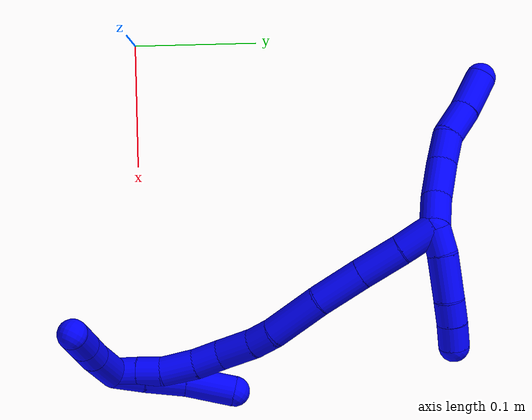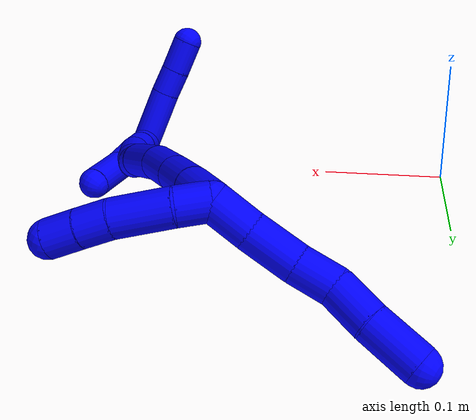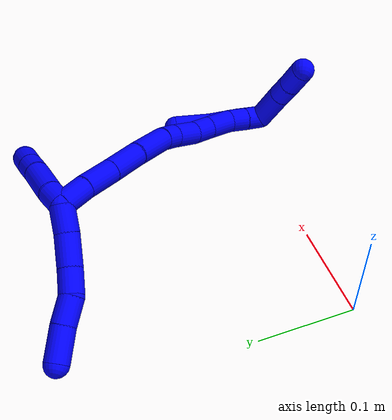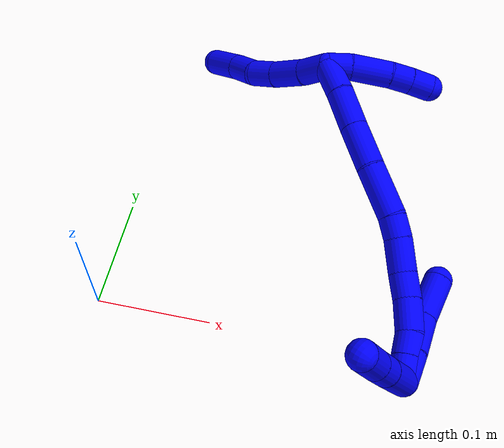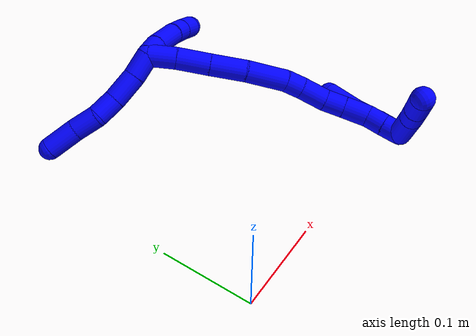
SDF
<sdf version="1.7">
 <world name="default">
  <model name="1">
   <static>0</static>
   <link name="1">
    <collision name="collision-cylinder-e_1_2_8">
     <pose>0.005383 0.004339 -0.012065 -2.79635 0.397531 -1.7146</pose>
     <geometry><cylinder><radius>0.0125</radius><length>0.027811</length></cylinder></geometry>
     <surface>
      <friction><ode><mu>1.16</mu><mu2>1.16</mu2><slip1>0</slip1><slip2>0</slip2></ode></friction>
      <contact><ode><kp>1e+06</kp><kd>1</kd><max_vel>0</max_vel><min_depth>0.001</min_depth></ode></contact>
     </surface>
    </collision>
    <visual name="visual-cylinder-e_1_2_8">
     <pose>0.005383 0.004339 -0.012065 -2.79635 0.397531 -1.7146</pose>
     <geometry><cylinder><radius>0.0125</radius><length>0.027811</length></cylinder></geometry>
     <material><ambient>0 0 1 1</ambient></material>
    </visual>
    <collision name="collision-cylinder-e_2_8_9">
     <pose>0.015769 0.012421 -0.039498 -2.90271 0.306296 -1.81986</pose>
     <geometry><cylinder><radius>0.0125</radius><length>0.03318</length></cylinder></geometry>
     <surface>
      <friction><ode><mu>1.16</mu><mu2>1.16</mu2><slip1>0</slip1><slip2>0</slip2></ode></friction>
      <contact><ode><kp>1e+06</kp><kd>1</kd><max_vel>0</max_vel><min_depth>0.001</min_depth></ode></contact>
     </surface>
    </collision>
    <visual name="visual-cylinder-e_2_8_9">
     <pose>0.015769 0.012421 -0.039498 -2.90271 0.306296 -1.81986</pose>
     <geometry><cylinder><radius>0.0125</radius><length>0.03318</length></cylinder></geometry>
     <material><ambient>0 0 1 1</ambient></material>
    </visual>
    <collision name="collision-cylinder-e_3_9_10">
     <pose>0.024048 0.017552 -0.067336 -3.03073 0.255447 -2.32592</pose>
     <geometry><cylinder><radius>0.0125</radius><length>0.025935</length></cylinder></geometry>
     <surface>
      <friction><ode><mu>1.16</mu><mu2>1.16</mu2><slip1>0</slip1><slip2>0</slip2></ode></friction>
      <contact><ode><kp>1e+06</kp><kd>1</kd><max_vel>0</max_vel><min_depth>0.001</min_depth></ode></contact>
     </surface>
    </collision>
    <visual name="visual-cylinder-e_3_9_10">
     <pose>0.024048 0.017552 -0.067336 -3.03073 0.255447 -2.32592</pose>
     <geometry><cylinder><radius>0.0125</radius><length>0.025935</length></cylinder></geometry>
     <material><ambient>0 0 1 1</ambient></material>
    </visual>
    <collision name="collision-cylinder-e_4_10_11">
     <pose>0.026498 0.022349 -0.093447 -2.89671 -0.058731 0.468638</pose>
     <geometry><cylinder><radius>0.0125</radius><length>0.02817</length></cylinder></geometry>
     <surface>
      <friction><ode><mu>1.16</mu><mu2>1.16</mu2><slip1>0</slip1><slip2>0</slip2></ode></friction>
      <contact><ode><kp>1e+06</kp><kd>1</kd><max_vel>0</max_vel><min_depth>0.001</min_depth></ode></contact>
     </surface>
    </collision>
    <visual name="visual-cylinder-e_4_10_11">
     <pose>0.026498 0.022349 -0.093447 -2.89671 -0.058731 0.468638</pose>
     <geometry><cylinder><radius>0.0125</radius><length>0.02817</length></cylinder></geometry>
     <material><ambient>0 0 1 1</ambient></material>
    </visual>
    <collision name="collision-cylinder-e_5_11_6">
     <pose>0.026389 0.02946 -0.124128 -2.92765 0.041164 -0.378795</pose>
     <geometry><cylinder><radius>0.0125</radius><length>0.034904</length></cylinder></geometry>
     <surface>
      <friction><ode><mu>1.16</mu><mu2>1.16</mu2><slip1>0</slip1><slip2>0</slip2></ode></friction>
      <contact><ode><kp>1e+06</kp><kd>1</kd><max_vel>0</max_vel><min_depth>0.001</min_depth></ode></contact>
     </surface>
    </collision>
    <visual name="visual-cylinder-e_5_11_6">
     <pose>0.026389 0.02946 -0.124128 -2.92765 0.041164 -0.378795</pose>
     <geometry><cylinder><radius>0.0125</radius><length>0.034904</length></cylinder></geometry>
     <material><ambient>0 0 1 1</ambient></material>
    </visual>
    <collision name="collision-cylinder-e_1_2_12">
     <pose>-0.006456 0.004685 0.007367 -0.566472 -0.636745 0.191273</pose>
     <geometry><cylinder><radius>0.0125</radius><length>0.021717</length></cylinder></geometry>
     <surface>
      <friction><ode><mu>1.16</mu><mu2>1.16</mu2><slip1>0</slip1><slip2>0</slip2></ode></friction>
      <contact><ode><kp>1e+06</kp><kd>1</kd><max_vel>0</max_vel><min_depth>0.001</min_depth></ode></contact>
     </surface>
    </collision>
    <visual name="visual-cylinder-e_1_2_12">
     <pose>-0.006456 0.004685 0.007367 -0.566472 -0.636745 0.191273</pose>
     <geometry><cylinder><radius>0.0125</radius><length>0.021717</length></cylinder></geometry>
     <material><ambient>0 0 1 1</ambient></material>
    </visual>
    <collision name="collision-cylinder-e_2_12_13">
     <pose>-0.021593 0.018927 0.028413 -0.609777 -0.479689 0.153618</pose>
     <geometry><cylinder><radius>0.0125</radius><length>0.037621</length></cylinder></geometry>
     <surface>
      <friction><ode><mu>1.16</mu><mu2>1.16</mu2><slip1>0</slip1><slip2>0</slip2></ode></friction>
      <contact><ode><kp>1e+06</kp><kd>1</kd><max_vel>0</max_vel><min_depth>0.001</min_depth></ode></contact>
     </surface>
    </collision>
    <visual name="visual-cylinder-e_2_12_13">
     <pose>-0.021593 0.018927 0.028413 -0.609777 -0.479689 0.153618</pose>
     <geometry><cylinder><radius>0.0125</radius><length>0.037621</length></cylinder></geometry>
     <material><ambient>0 0 1 1</ambient></material>
    </visual>
    <collision name="collision-cylinder-e_3_13_14">
     <pose>-0.034394 0.034623 0.048836 -0.738588 -0.424354 0.166372</pose>
     <geometry><cylinder><radius>0.0125</radius><length>0.020014</length></cylinder></geometry>
     <surface>
      <friction><ode><mu>1.16</mu><mu2>1.16</mu2><slip1>0</slip1><slip2>0</slip2></ode></friction>
      <contact><ode><kp>1e+06</kp><kd>1</kd><max_vel>0</max_vel><min_depth>0.001</min_depth></ode></contact>
     </surface>
    </collision>
    <visual name="visual-cylinder-e_3_13_14">
     <pose>-0.034394 0.034623 0.048836 -0.738588 -0.424354 0.166372</pose>
     <geometry><cylinder><radius>0.0125</radius><length>0.020014</length></cylinder></geometry>
     <material><ambient>0 0 1 1</ambient></material>
    </visual>
    <collision name="collision-cylinder-e_4_14_5">
     <pose>-0.042259 0.047309 0.062631 -0.748187 -0.371138 0.147131</pose>
     <geometry><cylinder><radius>0.0125</radius><length>0.020649</length></cylinder></geometry>
     <surface>
      <friction><ode><mu>1.16</mu><mu2>1.16</mu2><slip1>0</slip1><slip2>0</slip2></ode></friction>
      <contact><ode><kp>1e+06</kp><kd>1</kd><max_vel>0</max_vel><min_depth>0.001</min_depth></ode></contact>
     </surface>
    </collision>
    <visual name="visual-cylinder-e_4_14_5">
     <pose>-0.042259 0.047309 0.062631 -0.748187 -0.371138 0.147131</pose>
     <geometry><cylinder><radius>0.0125</radius><length>0.020649</length></cylinder></geometry>
     <material><ambient>0 0 1 1</ambient></material>
    </visual>
    <collision name="collision-cylinder-e_1_2_15">
     <pose>0.008694 0.002666 0.012994 -0.202336 0.580165 -0.060586</pose>
     <geometry><cylinder><radius>0.0125</radius><length>0.03172</length></cylinder></geometry>
     <surface>
      <friction><ode><mu>1.16</mu><mu2>1.16</mu2><slip1>0</slip1><slip2>0</slip2></ode></friction>
      <contact><ode><kp>1e+06</kp><kd>1</kd><max_vel>0</max_vel><min_depth>0.001</min_depth></ode></contact>
     </surface>
    </collision>
    <visual name="visual-cylinder-e_1_2_15">
     <pose>0.008694 0.002666 0.012994 -0.202336 0.580165 -0.060586</pose>
     <geometry><cylinder><radius>0.0125</radius><length>0.03172</length></cylinder></geometry>
     <material><ambient>0 0 1 1</ambient></material>
    </visual>
    <collision name="collision-cylinder-e_2_15_16">
     <pose>0.028412 0.009566 0.040461 -0.284657 0.631298 -0.093524</pose>
     <geometry><cylinder><radius>0.0125</radius><length>0.03736</length></cylinder></geometry>
     <surface>
      <friction><ode><mu>1.16</mu><mu2>1.16</mu2><slip1>0</slip1><slip2>0</slip2></ode></friction>
      <contact><ode><kp>1e+06</kp><kd>1</kd><max_vel>0</max_vel><min_depth>0.001</min_depth></ode></contact>
     </surface>
    </collision>
    <visual name="visual-cylinder-e_2_15_16">
     <pose>0.028412 0.009566 0.040461 -0.284657 0.631298 -0.093524</pose>
     <geometry><cylinder><radius>0.0125</radius><length>0.03736</length></cylinder></geometry>
     <material><ambient>0 0 1 1</ambient></material>
    </visual>
    <collision name="collision-cylinder-e_3_16_17">
     <pose>0.051068 0.018603 0.070889 -0.292347 0.609423 -0.092539</pose>
     <geometry><cylinder><radius>0.0125</radius><length>0.04064</length></cylinder></geometry>
     <surface>
      <friction><ode><mu>1.16</mu><mu2>1.16</mu2><slip1>0</slip1><slip2>0</slip2></ode></friction>
      <contact><ode><kp>1e+06</kp><kd>1</kd><max_vel>0</max_vel><min_depth>0.001</min_depth></ode></contact>
     </surface>
    </collision>
    <visual name="visual-cylinder-e_3_16_17">
     <pose>0.051068 0.018603 0.070889 -0.292347 0.609423 -0.092539</pose>
     <geometry><cylinder><radius>0.0125</radius><length>0.04064</length></cylinder></geometry>
     <material><ambient>0 0 1 1</ambient></material>
    </visual>
    <collision name="collision-cylinder-e_4_17_18">
     <pose>0.075448 0.031899 0.104692 -0.444211 0.572822 -0.132823</pose>
     <geometry><cylinder><radius>0.0125</radius><length>0.047042</length></cylinder></geometry>
     <surface>
      <friction><ode><mu>1.16</mu><mu2>1.16</mu2><slip1>0</slip1><slip2>0</slip2></ode></friction>
      <contact><ode><kp>1e+06</kp><kd>1</kd><max_vel>0</max_vel><min_depth>0.001</min_depth></ode></contact>
     </surface>
    </collision>
    <visual name="visual-cylinder-e_4_17_18">
     <pose>0.075448 0.031899 0.104692 -0.444211 0.572822 -0.132823</pose>
     <geometry><cylinder><radius>0.0125</radius><length>0.047042</length></cylinder></geometry>
     <material><ambient>0 0 1 1</ambient></material>
    </visual>
    <collision name="collision-cylinder-e_5_18_19">
     <pose>0.094621 0.044796 0.128878 -0.607091 0.694304 -0.22569</pose>
     <geometry><cylinder><radius>0.0125</radius><length>0.020082</length></cylinder></geometry>
     <surface>
      <friction><ode><mu>1.16</mu><mu2>1.16</mu2><slip1>0</slip1><slip2>0</slip2></ode></friction>
      <contact><ode><kp>1e+06</kp><kd>1</kd><max_vel>0</max_vel><min_depth>0.001</min_depth></ode></contact>
     </surface>
    </collision>
    <visual name="visual-cylinder-e_5_18_19">
     <pose>0.094621 0.044796 0.128878 -0.607091 0.694304 -0.22569</pose>
     <geometry><cylinder><radius>0.0125</radius><length>0.020082</length></cylinder></geometry>
     <material><ambient>0 0 1 1</ambient></material>
    </visual>
    <collision name="collision-cylinder-e_6_19_20">
     <pose>0.112304 0.054718 0.14388 -0.567268 0.831122 -0.255843</pose>
     <geometry><cylinder><radius>0.0125</radius><length>0.030484</length></cylinder></geometry>
     <surface>
      <friction><ode><mu>1.16</mu><mu2>1.16</mu2><slip1>0</slip1><slip2>0</slip2></ode></friction>
      <contact><ode><kp>1e+06</kp><kd>1</kd><max_vel>0</max_vel><min_depth>0.001</min_depth></ode></contact>
     </surface>
    </collision>
    <visual name="visual-cylinder-e_6_19_20">
     <pose>0.112304 0.054718 0.14388 -0.567268 0.831122 -0.255843</pose>
     <geometry><cylinder><radius>0.0125</radius><length>0.030484</length></cylinder></geometry>
     <material><ambient>0 0 1 1</ambient></material>
    </visual>
    <collision name="collision-cylinder-e_7_20_21">
     <pose>0.132095 0.062764 0.160044 -0.324765 0.822945 -0.142738</pose>
     <geometry><cylinder><radius>0.0125</radius><length>0.023273</length></cylinder></geometry>
     <surface>
      <friction><ode><mu>1.16</mu><mu2>1.16</mu2><slip1>0</slip1><slip2>0</slip2></ode></friction>
      <contact><ode><kp>1e+06</kp><kd>1</kd><max_vel>0</max_vel><min_depth>0.001</min_depth></ode></contact>
     </surface>
    </collision>
    <visual name="visual-cylinder-e_7_20_21">
     <pose>0.132095 0.062764 0.160044 -0.324765 0.822945 -0.142738</pose>
     <geometry><cylinder><radius>0.0125</radius><length>0.023273</length></cylinder></geometry>
     <material><ambient>0 0 1 1</ambient></material>
    </visual>
    <collision name="collision-cylinder-e_8_21_22">
     <pose>0.152193 0.066702 0.176217 -0.161493 0.921106 -0.080254</pose>
     <geometry><cylinder><radius>0.0125</radius><length>0.029053</length></cylinder></geometry>
     <surface>
      <friction><ode><mu>1.16</mu><mu2>1.16</mu2><slip1>0</slip1><slip2>0</slip2></ode></friction>
      <contact><ode><kp>1e+06</kp><kd>1</kd><max_vel>0</max_vel><min_depth>0.001</min_depth></ode></contact>
     </surface>
    </collision>
    <visual name="visual-cylinder-e_8_21_22">
     <pose>0.152193 0.066702 0.176217 -0.161493 0.921106 -0.080254</pose>
     <geometry><cylinder><radius>0.0125</radius><length>0.029053</length></cylinder></geometry>
     <material><ambient>0 0 1 1</ambient></material>
    </visual>
    <collision name="collision-cylinder-e_9_22_23">
     <pose>0.172954 0.068296 0.189005 -0.044119 1.14967 -0.028583</pose>
     <geometry><cylinder><radius>0.0125</radius><length>0.020149</length></cylinder></geometry>
     <surface>
      <friction><ode><mu>1.16</mu><mu2>1.16</mu2><slip1>0</slip1><slip2>0</slip2></ode></friction>
      <contact><ode><kp>1e+06</kp><kd>1</kd><max_vel>0</max_vel><min_depth>0.001</min_depth></ode></contact>
     </surface>
    </collision>
    <visual name="visual-cylinder-e_9_22_23">
     <pose>0.172954 0.068296 0.189005 -0.044119 1.14967 -0.028583</pose>
     <geometry><cylinder><radius>0.0125</radius><length>0.020149</length></cylinder></geometry>
     <material><ambient>0 0 1 1</ambient></material>
    </visual>
    <collision name="collision-cylinder-e_10_23_1">
     <pose>0.191175 0.0689 0.197629 -0.09325 1.10569 -0.057563</pose>
     <geometry><cylinder><radius>0.0125</radius><length>0.020198</length></cylinder></geometry>
     <surface>
      <friction><ode><mu>1.16</mu><mu2>1.16</mu2><slip1>0</slip1><slip2>0</slip2></ode></friction>
      <contact><ode><kp>1e+06</kp><kd>1</kd><max_vel>0</max_vel><min_depth>0.001</min_depth></ode></contact>
     </surface>
    </collision>
    <visual name="visual-cylinder-e_10_23_1">
     <pose>0.191175 0.0689 0.197629 -0.09325 1.10569 -0.057563</pose>
     <geometry><cylinder><radius>0.0125</radius><length>0.020198</length></cylinder></geometry>
     <material><ambient>0 0 1 1</ambient></material>
    </visual>
    <collision name="collision-cylinder-e_1_1_24">
     <pose>0.187629 0.071426 0.197892 -2.68152 -1.21025 2.48869</pose>
     <geometry><cylinder><radius>0.0125</radius><length>0.026872</length></cylinder></geometry>
     <surface>
      <friction><ode><mu>1.16</mu><mu2>1.16</mu2><slip1>0</slip1><slip2>0</slip2></ode></friction>
      <contact><ode><kp>1e+06</kp><kd>1</kd><max_vel>0</max_vel><min_depth>0.001</min_depth></ode></contact>
     </surface>
    </collision>
    <visual name="visual-cylinder-e_1_1_24">
     <pose>0.187629 0.071426 0.197892 -2.68152 -1.21025 2.48869</pose>
     <geometry><cylinder><radius>0.0125</radius><length>0.026872</length></cylinder></geometry>
     <material><ambient>0 0 1 1</ambient></material>
    </visual>
    <collision name="collision-cylinder-e_2_24_25">
     <pose>0.159889 0.076398 0.187685 -2.69319 -1.15965 2.47147</pose>
     <geometry><cylinder><radius>0.0125</radius><length>0.033095</length></cylinder></geometry>
     <surface>
      <friction><ode><mu>1.16</mu><mu2>1.16</mu2><slip1>0</slip1><slip2>0</slip2></ode></friction>
      <contact><ode><kp>1e+06</kp><kd>1</kd><max_vel>0</max_vel><min_depth>0.001</min_depth></ode></contact>
     </surface>
    </collision>
    <visual name="visual-cylinder-e_2_24_25">
     <pose>0.159889 0.076398 0.187685 -2.69319 -1.15965 2.47147</pose>
     <geometry><cylinder><radius>0.0125</radius><length>0.033095</length></cylinder></geometry>
     <material><ambient>0 0 1 1</ambient></material>
    </visual>
    <collision name="collision-cylinder-e_3_25_4">
     <pose>0.125726 0.082949 0.176598 -2.51858 -1.24987 2.30196</pose>
     <geometry><cylinder><radius>0.0125</radius><length>0.040033</length></cylinder></geometry>
     <surface>
      <friction><ode><mu>1.16</mu><mu2>1.16</mu2><slip1>0</slip1><slip2>0</slip2></ode></friction>
      <contact><ode><kp>1e+06</kp><kd>1</kd><max_vel>0</max_vel><min_depth>0.001</min_depth></ode></contact>
     </surface>
    </collision>
    <visual name="visual-cylinder-e_3_25_4">
     <pose>0.125726 0.082949 0.176598 -2.51858 -1.24987 2.30196</pose>
     <geometry><cylinder><radius>0.0125</radius><length>0.040033</length></cylinder></geometry>
     <material><ambient>0 0 1 1</ambient></material>
    </visual>
    <collision name="collision-cylinder-e_1_1_26">
     <pose>0.203893 0.045421 0.202814 1.54256 0.153209 0.148959</pose>
     <geometry><cylinder><radius>0.0125</radius><length>0.048387</length></cylinder></geometry>
     <surface>
      <friction><ode><mu>1.16</mu><mu2>1.16</mu2><slip1>0</slip1><slip2>0</slip2></ode></friction>
      <contact><ode><kp>1e+06</kp><kd>1</kd><max_vel>0</max_vel><min_depth>0.001</min_depth></ode></contact>
     </surface>
    </collision>
    <visual name="visual-cylinder-e_1_1_26">
     <pose>0.203893 0.045421 0.202814 1.54256 0.153209 0.148959</pose>
     <geometry><cylinder><radius>0.0125</radius><length>0.048387</length></cylinder></geometry>
     <material><ambient>0 0 1 1</ambient></material>
    </visual>
    <collision name="collision-cylinder-e_2_26_27">
     <pose>0.209261 0.010087 0.203066 1.60781 0.145391 0.150854</pose>
     <geometry><cylinder><radius>0.0125</radius><length>0.023127</length></cylinder></geometry>
     <surface>
      <friction><ode><mu>1.16</mu><mu2>1.16</mu2><slip1>0</slip1><slip2>0</slip2></ode></friction>
      <contact><ode><kp>1e+06</kp><kd>1</kd><max_vel>0</max_vel><min_depth>0.001</min_depth></ode></contact>
     </surface>
    </collision>
    <visual name="visual-cylinder-e_2_26_27">
     <pose>0.209261 0.010087 0.203066 1.60781 0.145391 0.150854</pose>
     <geometry><cylinder><radius>0.0125</radius><length>0.023127</length></cylinder></geometry>
     <material><ambient>0 0 1 1</ambient></material>
    </visual>
    <collision name="collision-cylinder-e_3_27_3">
     <pose>0.212671 -0.015482 0.202413 1.58702 0.122114 0.124106</pose>
     <geometry><cylinder><radius>0.0125</radius><length>0.028486</length></cylinder></geometry>
     <surface>
      <friction><ode><mu>1.16</mu><mu2>1.16</mu2><slip1>0</slip1><slip2>0</slip2></ode></friction>
      <contact><ode><kp>1e+06</kp><kd>1</kd><max_vel>0</max_vel><min_depth>0.001</min_depth></ode></contact>
     </surface>
    </collision>
    <visual name="visual-cylinder-e_3_27_3">
     <pose>0.212671 -0.015482 0.202413 1.58702 0.122114 0.124106</pose>
     <geometry><cylinder><radius>0.0125</radius><length>0.028486</length></cylinder></geometry>
     <material><ambient>0 0 1 1</ambient></material>
    </visual>
    <collision name="collision-sphere-3">
     <pose>0.214406 -0.029617 0.202184 0 -0 0</pose>
     <geometry><sphere><radius>0.0125</radius></sphere></geometry>
     <surface>
      <friction><ode><mu>1.16</mu><mu2>1.16</mu2><slip1>0</slip1><slip2>0</slip2></ode></friction>
      <contact><ode><kp>1e+06</kp><kd>1</kd><max_vel>0</max_vel><min_depth>0.001</min_depth></ode></contact>
     </surface>
    </collision>
    <visual name="visual-sphere-3">
     <pose>0.214406 -0.029617 0.202184 0 -0 0</pose>
     <geometry><sphere><radius>0.0125</radius></sphere></geometry>
     <material><ambient>0 0 1 1</ambient></material>
    </visual>
    <collision name="collision-sphere-27">
     <pose>0.210936 -0.001347 0.202642 0 -0 0</pose>
     <geometry><sphere><radius>0.0125</radius></sphere></geometry>
     <surface>
      <friction><ode><mu>1.16</mu><mu2>1.16</mu2><slip1>0</slip1><slip2>0</slip2></ode></friction>
      <contact><ode><kp>1e+06</kp><kd>1</kd><max_vel>0</max_vel><min_depth>0.001</min_depth></ode></contact>
     </surface>
    </collision>
    <visual name="visual-sphere-27">
     <pose>0.210936 -0.001347 0.202642 0 -0 0</pose>
     <geometry><sphere><radius>0.0125</radius></sphere></geometry>
     <material><ambient>0 0 1 1</ambient></material>
    </visual>
    <collision name="collision-sphere-26">
     <pose>0.207586 0.021521 0.203489 0 -0 0</pose>
     <geometry><sphere><radius>0.0125</radius></sphere></geometry>
     <surface>
      <friction><ode><mu>1.16</mu><mu2>1.16</mu2><slip1>0</slip1><slip2>0</slip2></ode></friction>
      <contact><ode><kp>1e+06</kp><kd>1</kd><max_vel>0</max_vel><min_depth>0.001</min_depth></ode></contact>
     </surface>
    </collision>
    <visual name="visual-sphere-26">
     <pose>0.207586 0.021521 0.203489 0 -0 0</pose>
     <geometry><sphere><radius>0.0125</radius></sphere></geometry>
     <material><ambient>0 0 1 1</ambient></material>
    </visual>
    <collision name="collision-sphere-4">
     <pose>0.106731 0.086634 0.17147 0 -0 0</pose>
     <geometry><sphere><radius>0.0125</radius></sphere></geometry>
     <surface>
      <friction><ode><mu>1.16</mu><mu2>1.16</mu2><slip1>0</slip1><slip2>0</slip2></ode></friction>
      <contact><ode><kp>1e+06</kp><kd>1</kd><max_vel>0</max_vel><min_depth>0.001</min_depth></ode></contact>
     </surface>
    </collision>
    <visual name="visual-sphere-4">
     <pose>0.106731 0.086634 0.17147 0 -0 0</pose>
     <geometry><sphere><radius>0.0125</radius></sphere></geometry>
     <material><ambient>0 0 1 1</ambient></material>
    </visual>
    <collision name="collision-sphere-25">
     <pose>0.14472 0.079265 0.181726 0 -0 0</pose>
     <geometry><sphere><radius>0.0125</radius></sphere></geometry>
     <surface>
      <friction><ode><mu>1.16</mu><mu2>1.16</mu2><slip1>0</slip1><slip2>0</slip2></ode></friction>
      <contact><ode><kp>1e+06</kp><kd>1</kd><max_vel>0</max_vel><min_depth>0.001</min_depth></ode></contact>
     </surface>
    </collision>
    <visual name="visual-sphere-25">
     <pose>0.14472 0.079265 0.181726 0 -0 0</pose>
     <geometry><sphere><radius>0.0125</radius></sphere></geometry>
     <material><ambient>0 0 1 1</ambient></material>
    </visual>
    <collision name="collision-sphere-24">
     <pose>0.175057 0.073531 0.193645 0 -0 0</pose>
     <geometry><sphere><radius>0.0125</radius></sphere></geometry>
     <surface>
      <friction><ode><mu>1.16</mu><mu2>1.16</mu2><slip1>0</slip1><slip2>0</slip2></ode></friction>
      <contact><ode><kp>1e+06</kp><kd>1</kd><max_vel>0</max_vel><min_depth>0.001</min_depth></ode></contact>
     </surface>
    </collision>
    <visual name="visual-sphere-24">
     <pose>0.175057 0.073531 0.193645 0 -0 0</pose>
     <geometry><sphere><radius>0.0125</radius></sphere></geometry>
     <material><ambient>0 0 1 1</ambient></material>
    </visual>
    <collision name="collision-sphere-1">
     <pose>0.200201 0.069322 0.202139 0 -0 0</pose>
     <geometry><sphere><radius>0.0125</radius></sphere></geometry>
     <surface>
      <friction><ode><mu>1.16</mu><mu2>1.16</mu2><slip1>0</slip1><slip2>0</slip2></ode></friction>
      <contact><ode><kp>1e+06</kp><kd>1</kd><max_vel>0</max_vel><min_depth>0.001</min_depth></ode></contact>
     </surface>
    </collision>
    <visual name="visual-sphere-1">
     <pose>0.200201 0.069322 0.202139 0 -0 0</pose>
     <geometry><sphere><radius>0.0125</radius></sphere></geometry>
     <material><ambient>0 0 1 1</ambient></material>
    </visual>
    <collision name="collision-sphere-23">
     <pose>0.182148 0.068478 0.193119 0 -0 0</pose>
     <geometry><sphere><radius>0.0125</radius></sphere></geometry>
     <surface>
      <friction><ode><mu>1.16</mu><mu2>1.16</mu2><slip1>0</slip1><slip2>0</slip2></ode></friction>
      <contact><ode><kp>1e+06</kp><kd>1</kd><max_vel>0</max_vel><min_depth>0.001</min_depth></ode></contact>
     </surface>
    </collision>
    <visual name="visual-sphere-23">
     <pose>0.182148 0.068478 0.193119 0 -0 0</pose>
     <geometry><sphere><radius>0.0125</radius></sphere></geometry>
     <material><ambient>0 0 1 1</ambient></material>
    </visual>
    <collision name="collision-sphere-22">
     <pose>0.16376 0.068115 0.18489 0 -0 0</pose>
     <geometry><sphere><radius>0.0125</radius></sphere></geometry>
     <surface>
      <friction><ode><mu>1.16</mu><mu2>1.16</mu2><slip1>0</slip1><slip2>0</slip2></ode></friction>
      <contact><ode><kp>1e+06</kp><kd>1</kd><max_vel>0</max_vel><min_depth>0.001</min_depth></ode></contact>
     </surface>
    </collision>
    <visual name="visual-sphere-22">
     <pose>0.16376 0.068115 0.18489 0 -0 0</pose>
     <geometry><sphere><radius>0.0125</radius></sphere></geometry>
     <material><ambient>0 0 1 1</ambient></material>
    </visual>
    <collision name="collision-sphere-21">
     <pose>0.140626 0.065289 0.167544 0 -0 0</pose>
     <geometry><sphere><radius>0.0125</radius></sphere></geometry>
     <surface>
      <friction><ode><mu>1.16</mu><mu2>1.16</mu2><slip1>0</slip1><slip2>0</slip2></ode></friction>
      <contact><ode><kp>1e+06</kp><kd>1</kd><max_vel>0</max_vel><min_depth>0.001</min_depth></ode></contact>
     </surface>
    </collision>
    <visual name="visual-sphere-21">
     <pose>0.140626 0.065289 0.167544 0 -0 0</pose>
     <geometry><sphere><radius>0.0125</radius></sphere></geometry>
     <material><ambient>0 0 1 1</ambient></material>
    </visual>
    <collision name="collision-sphere-6">
     <pose>0.027108 0.033162 -0.141168 0 -0 0</pose>
     <geometry><sphere><radius>0.0125</radius></sphere></geometry>
     <surface>
      <friction><ode><mu>1.16</mu><mu2>1.16</mu2><slip1>0</slip1><slip2>0</slip2></ode></friction>
      <contact><ode><kp>1e+06</kp><kd>1</kd><max_vel>0</max_vel><min_depth>0.001</min_depth></ode></contact>
     </surface>
    </collision>
    <visual name="visual-sphere-6">
     <pose>0.027108 0.033162 -0.141168 0 -0 0</pose>
     <geometry><sphere><radius>0.0125</radius></sphere></geometry>
     <material><ambient>0 0 1 1</ambient></material>
    </visual>
    <collision name="collision-sphere-11">
     <pose>0.025671 0.025757 -0.107088 0 -0 0</pose>
     <geometry><sphere><radius>0.0125</radius></sphere></geometry>
     <surface>
      <friction><ode><mu>1.16</mu><mu2>1.16</mu2><slip1>0</slip1><slip2>0</slip2></ode></friction>
      <contact><ode><kp>1e+06</kp><kd>1</kd><max_vel>0</max_vel><min_depth>0.001</min_depth></ode></contact>
     </surface>
    </collision>
    <visual name="visual-sphere-11">
     <pose>0.025671 0.025757 -0.107088 0 -0 0</pose>
     <geometry><sphere><radius>0.0125</radius></sphere></geometry>
     <material><ambient>0 0 1 1</ambient></material>
    </visual>
    <collision name="collision-sphere-10">
     <pose>0.027325 0.01894 -0.079806 0 -0 0</pose>
     <geometry><sphere><radius>0.0125</radius></sphere></geometry>
     <surface>
      <friction><ode><mu>1.16</mu><mu2>1.16</mu2><slip1>0</slip1><slip2>0</slip2></ode></friction>
      <contact><ode><kp>1e+06</kp><kd>1</kd><max_vel>0</max_vel><min_depth>0.001</min_depth></ode></contact>
     </surface>
    </collision>
    <visual name="visual-sphere-10">
     <pose>0.027325 0.01894 -0.079806 0 -0 0</pose>
     <geometry><sphere><radius>0.0125</radius></sphere></geometry>
     <material><ambient>0 0 1 1</ambient></material>
    </visual>
    <collision name="collision-sphere-9">
     <pose>0.020772 0.016164 -0.054867 0 -0 0</pose>
     <geometry><sphere><radius>0.0125</radius></sphere></geometry>
     <surface>
      <friction><ode><mu>1.16</mu><mu2>1.16</mu2><slip1>0</slip1><slip2>0</slip2></ode></friction>
      <contact><ode><kp>1e+06</kp><kd>1</kd><max_vel>0</max_vel><min_depth>0.001</min_depth></ode></contact>
     </surface>
    </collision>
    <visual name="visual-sphere-9">
     <pose>0.020772 0.016164 -0.054867 0 -0 0</pose>
     <geometry><sphere><radius>0.0125</radius></sphere></geometry>
     <material><ambient>0 0 1 1</ambient></material>
    </visual>
    <collision name="collision-sphere-2">
     <geometry><sphere><radius>0.0125</radius></sphere></geometry>
     <surface>
      <friction><ode><mu>1.16</mu><mu2>1.16</mu2><slip1>0</slip1><slip2>0</slip2></ode></friction>
      <contact><ode><kp>1e+06</kp><kd>1</kd><max_vel>0</max_vel><min_depth>0.001</min_depth></ode></contact>
     </surface>
    </collision>
    <visual name="visual-sphere-2">
     <geometry><sphere><radius>0.0125</radius></sphere></geometry>
     <material><ambient>0 0 1 1</ambient></material>
    </visual>
    <collision name="collision-sphere-19">
     <pose>0.101045 0.049198 0.135215 0 -0 0</pose>
     <geometry><sphere><radius>0.0125</radius></sphere></geometry>
     <surface>
      <friction><ode><mu>1.16</mu><mu2>1.16</mu2><slip1>0</slip1><slip2>0</slip2></ode></friction>
      <contact><ode><kp>1e+06</kp><kd>1</kd><max_vel>0</max_vel><min_depth>0.001</min_depth></ode></contact>
     </surface>
    </collision>
    <visual name="visual-sphere-19">
     <pose>0.101045 0.049198 0.135215 0 -0 0</pose>
     <geometry><sphere><radius>0.0125</radius></sphere></geometry>
     <material><ambient>0 0 1 1</ambient></material>
    </visual>
    <collision name="collision-sphere-8">
     <pose>0.010767 0.008678 -0.024129 0 -0 0</pose>
     <geometry><sphere><radius>0.0125</radius></sphere></geometry>
     <surface>
      <friction><ode><mu>1.16</mu><mu2>1.16</mu2><slip1>0</slip1><slip2>0</slip2></ode></friction>
      <contact><ode><kp>1e+06</kp><kd>1</kd><max_vel>0</max_vel><min_depth>0.001</min_depth></ode></contact>
     </surface>
    </collision>
    <visual name="visual-sphere-8">
     <pose>0.010767 0.008678 -0.024129 0 -0 0</pose>
     <geometry><sphere><radius>0.0125</radius></sphere></geometry>
     <material><ambient>0 0 1 1</ambient></material>
    </visual>
    <collision name="collision-sphere-12">
     <pose>-0.012912 0.009371 0.014733 0 -0 0</pose>
     <geometry><sphere><radius>0.0125</radius></sphere></geometry>
     <surface>
      <friction><ode><mu>1.16</mu><mu2>1.16</mu2><slip1>0</slip1><slip2>0</slip2></ode></friction>
      <contact><ode><kp>1e+06</kp><kd>1</kd><max_vel>0</max_vel><min_depth>0.001</min_depth></ode></contact>
     </surface>
    </collision>
    <visual name="visual-sphere-12">
     <pose>-0.012912 0.009371 0.014733 0 -0 0</pose>
     <geometry><sphere><radius>0.0125</radius></sphere></geometry>
     <material><ambient>0 0 1 1</ambient></material>
    </visual>
    <collision name="collision-sphere-13">
     <pose>-0.030274 0.028484 0.042093 0 -0 0</pose>
     <geometry><sphere><radius>0.0125</radius></sphere></geometry>
     <surface>
      <friction><ode><mu>1.16</mu><mu2>1.16</mu2><slip1>0</slip1><slip2>0</slip2></ode></friction>
      <contact><ode><kp>1e+06</kp><kd>1</kd><max_vel>0</max_vel><min_depth>0.001</min_depth></ode></contact>
     </surface>
    </collision>
    <visual name="visual-sphere-13">
     <pose>-0.030274 0.028484 0.042093 0 -0 0</pose>
     <geometry><sphere><radius>0.0125</radius></sphere></geometry>
     <material><ambient>0 0 1 1</ambient></material>
    </visual>
    <collision name="collision-sphere-14">
     <pose>-0.038515 0.040763 0.055579 0 -0 0</pose>
     <geometry><sphere><radius>0.0125</radius></sphere></geometry>
     <surface>
      <friction><ode><mu>1.16</mu><mu2>1.16</mu2><slip1>0</slip1><slip2>0</slip2></ode></friction>
      <contact><ode><kp>1e+06</kp><kd>1</kd><max_vel>0</max_vel><min_depth>0.001</min_depth></ode></contact>
     </surface>
    </collision>
    <visual name="visual-sphere-14">
     <pose>-0.038515 0.040763 0.055579 0 -0 0</pose>
     <geometry><sphere><radius>0.0125</radius></sphere></geometry>
     <material><ambient>0 0 1 1</ambient></material>
    </visual>
    <collision name="collision-sphere-5">
     <pose>-0.046004 0.053854 0.069683 0 -0 0</pose>
     <geometry><sphere><radius>0.0125</radius></sphere></geometry>
     <surface>
      <friction><ode><mu>1.16</mu><mu2>1.16</mu2><slip1>0</slip1><slip2>0</slip2></ode></friction>
      <contact><ode><kp>1e+06</kp><kd>1</kd><max_vel>0</max_vel><min_depth>0.001</min_depth></ode></contact>
     </surface>
    </collision>
    <visual name="visual-sphere-5">
     <pose>-0.046004 0.053854 0.069683 0 -0 0</pose>
     <geometry><sphere><radius>0.0125</radius></sphere></geometry>
     <material><ambient>0 0 1 1</ambient></material>
    </visual>
    <collision name="collision-sphere-15">
     <pose>0.017388 0.005331 0.025989 0 -0 0</pose>
     <geometry><sphere><radius>0.0125</radius></sphere></geometry>
     <surface>
      <friction><ode><mu>1.16</mu><mu2>1.16</mu2><slip1>0</slip1><slip2>0</slip2></ode></friction>
      <contact><ode><kp>1e+06</kp><kd>1</kd><max_vel>0</max_vel><min_depth>0.001</min_depth></ode></contact>
     </surface>
    </collision>
    <visual name="visual-sphere-15">
     <pose>0.017388 0.005331 0.025989 0 -0 0</pose>
     <geometry><sphere><radius>0.0125</radius></sphere></geometry>
     <material><ambient>0 0 1 1</ambient></material>
    </visual>
    <collision name="collision-sphere-16">
     <pose>0.039437 0.013801 0.054934 0 -0 0</pose>
     <geometry><sphere><radius>0.0125</radius></sphere></geometry>
     <surface>
      <friction><ode><mu>1.16</mu><mu2>1.16</mu2><slip1>0</slip1><slip2>0</slip2></ode></friction>
      <contact><ode><kp>1e+06</kp><kd>1</kd><max_vel>0</max_vel><min_depth>0.001</min_depth></ode></contact>
     </surface>
    </collision>
    <visual name="visual-sphere-16">
     <pose>0.039437 0.013801 0.054934 0 -0 0</pose>
     <geometry><sphere><radius>0.0125</radius></sphere></geometry>
     <material><ambient>0 0 1 1</ambient></material>
    </visual>
    <collision name="collision-sphere-17">
     <pose>0.062699 0.023405 0.086844 0 -0 0</pose>
     <geometry><sphere><radius>0.0125</radius></sphere></geometry>
     <surface>
      <friction><ode><mu>1.16</mu><mu2>1.16</mu2><slip1>0</slip1><slip2>0</slip2></ode></friction>
      <contact><ode><kp>1e+06</kp><kd>1</kd><max_vel>0</max_vel><min_depth>0.001</min_depth></ode></contact>
     </surface>
    </collision>
    <visual name="visual-sphere-17">
     <pose>0.062699 0.023405 0.086844 0 -0 0</pose>
     <geometry><sphere><radius>0.0125</radius></sphere></geometry>
     <material><ambient>0 0 1 1</ambient></material>
    </visual>
    <collision name="collision-sphere-18">
     <pose>0.088196 0.040394 0.12254 0 -0 0</pose>
     <geometry><sphere><radius>0.0125</radius></sphere></geometry>
     <surface>
      <friction><ode><mu>1.16</mu><mu2>1.16</mu2><slip1>0</slip1><slip2>0</slip2></ode></friction>
      <contact><ode><kp>1e+06</kp><kd>1</kd><max_vel>0</max_vel><min_depth>0.001</min_depth></ode></contact>
     </surface>
    </collision>
    <visual name="visual-sphere-18">
     <pose>0.088196 0.040394 0.12254 0 -0 0</pose>
     <geometry><sphere><radius>0.0125</radius></sphere></geometry>
     <material><ambient>0 0 1 1</ambient></material>
    </visual>
    <collision name="collision-sphere-20">
     <pose>0.123563 0.060239 0.152544 0 -0 0</pose>
     <geometry><sphere><radius>0.0125</radius></sphere></geometry>
     <surface>
      <friction><ode><mu>1.16</mu><mu2>1.16</mu2><slip1>0</slip1><slip2>0</slip2></ode></friction>
      <contact><ode><kp>1e+06</kp><kd>1</kd><max_vel>0</max_vel><min_depth>0.001</min_depth></ode></contact>
     </surface>
    </collision>
    <visual name="visual-sphere-20">
     <pose>0.123563 0.060239 0.152544 0 -0 0</pose>
     <geometry><sphere><radius>0.0125</radius></sphere></geometry>
     <material><ambient>0 0 1 1</ambient></material>
    </visual>
    <inertial>
     <pose>0.084945 0.035094 0.087153 0 -0 0</pose>
     <mass>0.75</mass>
     <inertia><ixx>5.9e-05</ixx><ixy>0</ixy><ixz>0</ixz><iyy>5.9e-05</iyy><iyz>0</iyz><izz>-1.1e-05</izz></inertia>
    </inertial>
   </link>
   <pose>0.156015 0.237926 0.081714 -1.33269 0.252653 -2.00721</pose>
  </model>
 </world>
</sdf>
